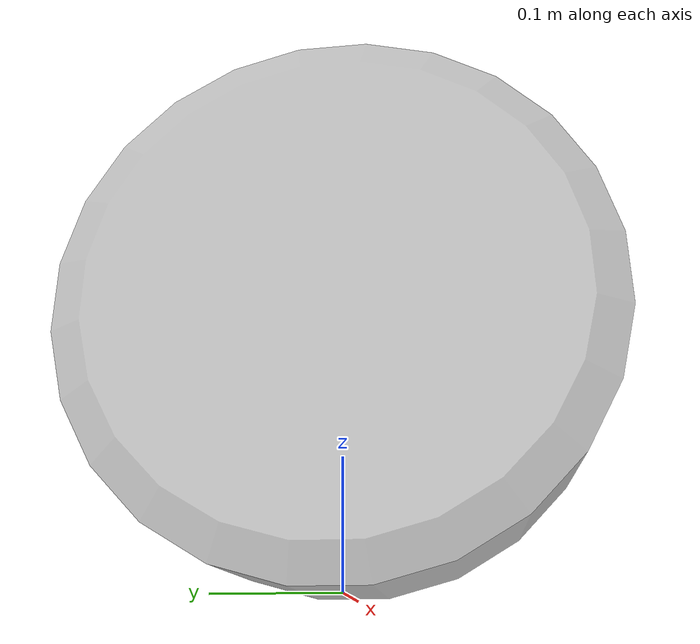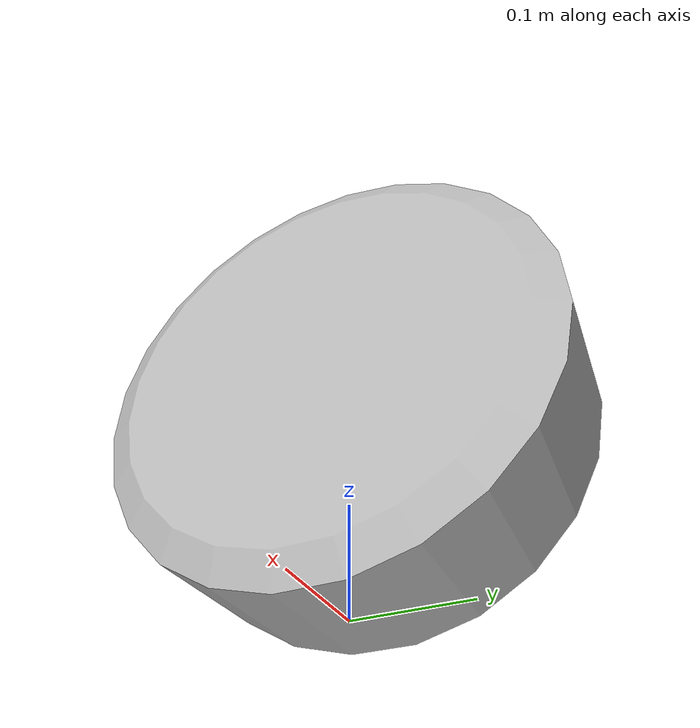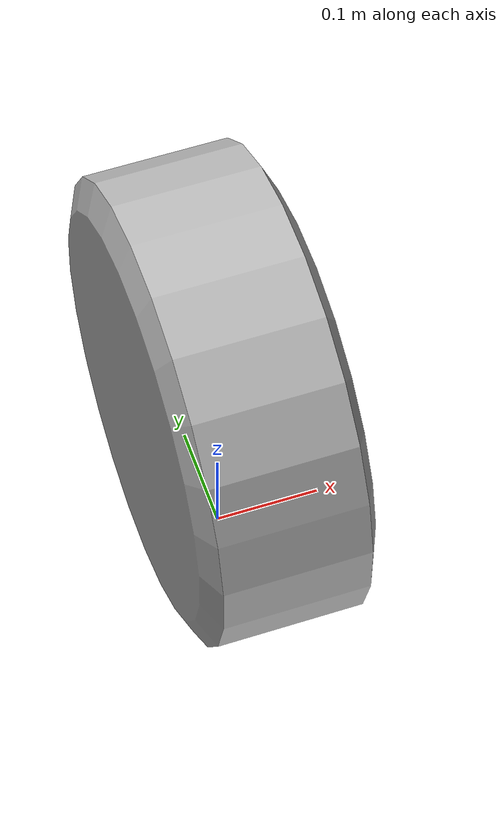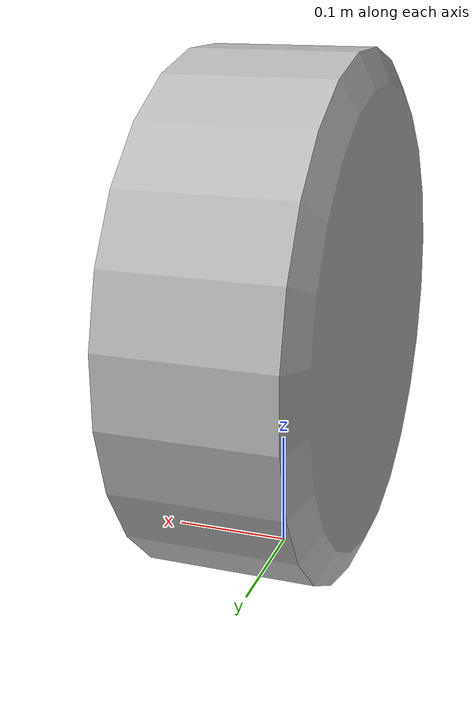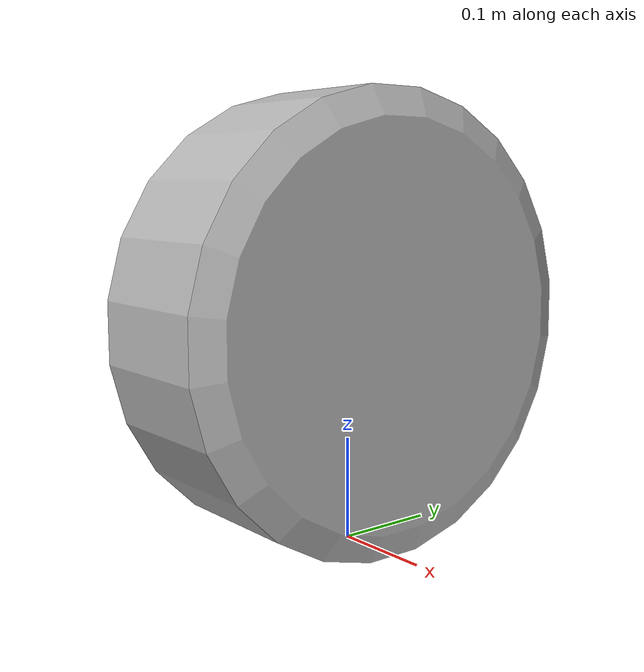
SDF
<?xml version="1.0" ?>
<sdf version="1.6">
    <model name="car_wheel">
        <link name="link">
            <pose>0 0 0.21682 0 1.5707 0</pose>
            <inertial>
                <mass>12</mass>
                <inertia>
                    <ixx>0.167005283</ixx>
                    <ixy>0</ixy>
                    <ixz>0</ixz>
                    <iyy>0.167005283</iyy>
                    <iyz>0</iyz>
                    <izz>0.282065474</izz>
                </inertia>
            </inertial>
            <collision name="collision">
                <geometry>
                    <cylinder>
                        <radius>0.21682</radius>
                        <length>0.16116</length>
                    </cylinder>
                </geometry>
                <surface>
                    <friction>
                        <ode>
                            <mu>1.0</mu>
                            <mu2>1.0</mu2>
                            <fdir1>0 0 1</fdir1>
                            <slip1>0.0</slip1>
                            <slip2>0.0</slip2>
                        </ode>
                    </friction>
                    <contact>
                        <ode>
                            <min_depth>0.005</min_depth>
                            <kp>1e8</kp>
                        </ode>
                    </contact>
                </surface>
            </collision>
            <visual name="visual">
                <pose>0 0 -0.08058 0 0 0</pose>
                <geometry>
                    <mesh>
                        <uri>model://car_wheel/meshes/car_wheel.dae</uri>
                    </mesh>
                </geometry>
            </visual>
        </link>
    </model>
</sdf>
